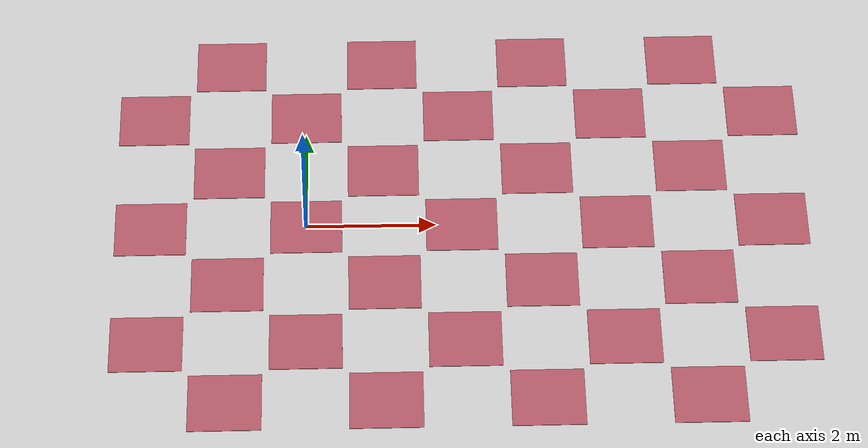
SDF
<?xml version="1.0" ?>
<sdf version="1.9">
  <world name="empty_ground">
    <physics name="1ms" type="ignored">
      <max_step_size>0.001</max_step_size>
      <real_time_factor>1.0</real_time_factor>
    </physics>
    <plugin filename="gz-sim-physics-system" name="gz::sim::systems::Physics"/>
    <plugin filename="gz-sim-user-commands-system" name="gz::sim::systems::UserCommands"/>
    <plugin filename="gz-sim-scene-broadcaster-system" name="gz::sim::systems::SceneBroadcaster"/>
    <plugin filename="gz-sim-sensors-system" name="gz::sim::systems::Sensors">
      <render_engine>ogre2</render_engine>
    </plugin>
    <plugin filename="gz-sim-imu-system" name="gz::sim::systems::Imu"/>

    <light type="directional" name="sun">
      <cast_shadows>true</cast_shadows>
      <pose>0 0 10 0 0 0</pose>
      <diffuse>0.8 0.8 0.8 1</diffuse>
      <specular>0.2 0.2 0.2 1</specular>
      <direction>-0.5 0.1 -0.9</direction>
    </light>

    <model name="ground_plane">
      <static>true</static>
      <link name="link">
        <collision name="collision">
          <geometry><plane><normal>0 0 1</normal><size>100 100</size></plane></geometry>
          <surface>
            <friction>
              <ode><mu>1.5</mu><mu2>1.5</mu2></ode>
              <torsional><coefficient>0.0</coefficient></torsional>
            </friction>
          </surface>
        </collision>
        <visual name="visual">
          <geometry><plane><normal>0 0 1</normal><size>100 100</size></plane></geometry>
          <material>
            <ambient>0.8 0.8 0.8 1</ambient>
            <diffuse>0.8 0.8 0.8 1</diffuse>
          </material>
        </visual>
      </link>
    </model>

    <model name="patch_1">
      <static>true</static>
      <pose>-2.400 -2.400 0.004 0 0 0</pose>
      <link name="link">
        <collision name="collision">
          <geometry><box><size>1.1 1.1 0.008</size></box></geometry>
          <surface>
            <friction>
              <ode><mu>0.15</mu><mu2>0.15</mu2></ode>
              <torsional><coefficient>0.0</coefficient></torsional>
            </friction>
          </surface>
        </collision>
        <visual name="visual">
          <geometry><box><size>1.1 1.1 0.008</size></box></geometry>
          <material>
            <ambient>0.65 0.3 0.35 1</ambient>
            <diffuse>0.70 0.35 0.4 1</diffuse>
          </material>
        </visual>
      </link>
    </model>

    <model name="patch_2">
      <static>true</static>
      <pose>-2.400 0.000 0.004 0 0 0</pose>
      <link name="link">
        <collision name="collision">
          <geometry><box><size>1.1 1.1 0.008</size></box></geometry>
          <surface>
            <friction>
              <ode><mu>0.15</mu><mu2>0.15</mu2></ode>
              <torsional><coefficient>0.0</coefficient></torsional>
            </friction>
          </surface>
        </collision>
        <visual name="visual">
          <geometry><box><size>1.1 1.1 0.008</size></box></geometry>
          <material>
            <ambient>0.65 0.3 0.35 1</ambient>
            <diffuse>0.70 0.35 0.4 1</diffuse>
          </material>
        </visual>
      </link>
    </model>

    <model name="patch_3">
      <static>true</static>
      <pose>-2.400 2.400 0.004 0 0 0</pose>
      <link name="link">
        <collision name="collision">
          <geometry><box><size>1.1 1.1 0.008</size></box></geometry>
          <surface>
            <friction>
              <ode><mu>0.15</mu><mu2>0.15</mu2></ode>
              <torsional><coefficient>0.0</coefficient></torsional>
            </friction>
          </surface>
        </collision>
        <visual name="visual">
          <geometry><box><size>1.1 1.1 0.008</size></box></geometry>
          <material>
            <ambient>0.65 0.3 0.35 1</ambient>
            <diffuse>0.70 0.35 0.4 1</diffuse>
          </material>
        </visual>
      </link>
    </model>

    <model name="patch_4">
      <static>true</static>
      <pose>-1.200 -3.600 0.004 0 0 0</pose>
      <link name="link">
        <collision name="collision">
          <geometry><box><size>1.1 1.1 0.008</size></box></geometry>
          <surface>
            <friction>
              <ode><mu>0.15</mu><mu2>0.15</mu2></ode>
              <torsional><coefficient>0.0</coefficient></torsional>
            </friction>
          </surface>
        </collision>
        <visual name="visual">
          <geometry><box><size>1.1 1.1 0.008</size></box></geometry>
          <material>
            <ambient>0.65 0.3 0.35 1</ambient>
            <diffuse>0.70 0.35 0.4 1</diffuse>
          </material>
        </visual>
      </link>
    </model>

    <model name="patch_5">
      <static>true</static>
      <pose>-1.200 -1.200 0.004 0 0 0</pose>
      <link name="link">
        <collision name="collision">
          <geometry><box><size>1.1 1.1 0.008</size></box></geometry>
          <surface>
            <friction>
              <ode><mu>0.15</mu><mu2>0.15</mu2></ode>
              <torsional><coefficient>0.0</coefficient></torsional>
            </friction>
          </surface>
        </collision>
        <visual name="visual">
          <geometry><box><size>1.1 1.1 0.008</size></box></geometry>
          <material>
            <ambient>0.65 0.3 0.35 1</ambient>
            <diffuse>0.70 0.35 0.4 1</diffuse>
          </material>
        </visual>
      </link>
    </model>

    <model name="patch_6">
      <static>true</static>
      <pose>-1.200 1.200 0.004 0 0 0</pose>
      <link name="link">
        <collision name="collision">
          <geometry><box><size>1.1 1.1 0.008</size></box></geometry>
          <surface>
            <friction>
              <ode><mu>0.15</mu><mu2>0.15</mu2></ode>
              <torsional><coefficient>0.0</coefficient></torsional>
            </friction>
          </surface>
        </collision>
        <visual name="visual">
          <geometry><box><size>1.1 1.1 0.008</size></box></geometry>
          <material>
            <ambient>0.65 0.3 0.35 1</ambient>
            <diffuse>0.70 0.35 0.4 1</diffuse>
          </material>
        </visual>
      </link>
    </model>

    <model name="patch_7">
      <static>true</static>
      <pose>-1.200 3.600 0.004 0 0 0</pose>
      <link name="link">
        <collision name="collision">
          <geometry><box><size>1.1 1.1 0.008</size></box></geometry>
          <surface>
            <friction>
              <ode><mu>0.15</mu><mu2>0.15</mu2></ode>
              <torsional><coefficient>0.0</coefficient></torsional>
            </friction>
          </surface>
        </collision>
        <visual name="visual">
          <geometry><box><size>1.1 1.1 0.008</size></box></geometry>
          <material>
            <ambient>0.65 0.3 0.35 1</ambient>
            <diffuse>0.70 0.35 0.4 1</diffuse>
          </material>
        </visual>
      </link>
    </model>

    <model name="patch_8">
      <static>true</static>
      <pose>0.000 -2.400 0.004 0 0 0</pose>
      <link name="link">
        <collision name="collision">
          <geometry><box><size>1.1 1.1 0.008</size></box></geometry>
          <surface>
            <friction>
              <ode><mu>0.15</mu><mu2>0.15</mu2></ode>
              <torsional><coefficient>0.0</coefficient></torsional>
            </friction>
          </surface>
        </collision>
        <visual name="visual">
          <geometry><box><size>1.1 1.1 0.008</size></box></geometry>
          <material>
            <ambient>0.65 0.3 0.35 1</ambient>
            <diffuse>0.70 0.35 0.4 1</diffuse>
          </material>
        </visual>
      </link>
    </model>

    <model name="patch_9">
      <static>true</static>
      <pose>0.000 0.000 0.004 0 0 0</pose>
      <link name="link">
        <collision name="collision">
          <geometry><box><size>1.1 1.1 0.008</size></box></geometry>
          <surface>
            <friction>
              <ode><mu>0.15</mu><mu2>0.15</mu2></ode>
              <torsional><coefficient>0.0</coefficient></torsional>
            </friction>
          </surface>
        </collision>
        <visual name="visual">
          <geometry><box><size>1.1 1.1 0.008</size></box></geometry>
          <material>
            <ambient>0.65 0.3 0.35 1</ambient>
            <diffuse>0.70 0.35 0.4 1</diffuse>
          </material>
        </visual>
      </link>
    </model>

    <model name="patch_10">
      <static>true</static>
      <pose>0.000 2.400 0.004 0 0 0</pose>
      <link name="link">
        <collision name="collision">
          <geometry><box><size>1.1 1.1 0.008</size></box></geometry>
          <surface>
            <friction>
              <ode><mu>0.15</mu><mu2>0.15</mu2></ode>
              <torsional><coefficient>0.0</coefficient></torsional>
            </friction>
          </surface>
        </collision>
        <visual name="visual">
          <geometry><box><size>1.1 1.1 0.008</size></box></geometry>
          <material>
            <ambient>0.65 0.3 0.35 1</ambient>
            <diffuse>0.70 0.35 0.4 1</diffuse>
          </material>
        </visual>
      </link>
    </model>

    <model name="patch_11">
      <static>true</static>
      <pose>1.200 -3.600 0.004 0 0 0</pose>
      <link name="link">
        <collision name="collision">
          <geometry><box><size>1.1 1.1 0.008</size></box></geometry>
          <surface>
            <friction>
              <ode><mu>0.15</mu><mu2>0.15</mu2></ode>
              <torsional><coefficient>0.0</coefficient></torsional>
            </friction>
          </surface>
        </collision>
        <visual name="visual">
          <geometry><box><size>1.1 1.1 0.008</size></box></geometry>
          <material>
            <ambient>0.65 0.3 0.35 1</ambient>
            <diffuse>0.70 0.35 0.4 1</diffuse>
          </material>
        </visual>
      </link>
    </model>

    <model name="patch_12">
      <static>true</static>
      <pose>1.200 -1.200 0.004 0 0 0</pose>
      <link name="link">
        <collision name="collision">
          <geometry><box><size>1.1 1.1 0.008</size></box></geometry>
          <surface>
            <friction>
              <ode><mu>0.15</mu><mu2>0.15</mu2></ode>
              <torsional><coefficient>0.0</coefficient></torsional>
            </friction>
          </surface>
        </collision>
        <visual name="visual">
          <geometry><box><size>1.1 1.1 0.008</size></box></geometry>
          <material>
            <ambient>0.65 0.3 0.35 1</ambient>
            <diffuse>0.70 0.35 0.4 1</diffuse>
          </material>
        </visual>
      </link>
    </model>

    <model name="patch_13">
      <static>true</static>
      <pose>1.200 1.200 0.004 0 0 0</pose>
      <link name="link">
        <collision name="collision">
          <geometry><box><size>1.1 1.1 0.008</size></box></geometry>
          <surface>
            <friction>
              <ode><mu>0.15</mu><mu2>0.15</mu2></ode>
              <torsional><coefficient>0.0</coefficient></torsional>
            </friction>
          </surface>
        </collision>
        <visual name="visual">
          <geometry><box><size>1.1 1.1 0.008</size></box></geometry>
          <material>
            <ambient>0.65 0.3 0.35 1</ambient>
            <diffuse>0.70 0.35 0.4 1</diffuse>
          </material>
        </visual>
      </link>
    </model>

    <model name="patch_14">
      <static>true</static>
      <pose>1.200 3.600 0.004 0 0 0</pose>
      <link name="link">
        <collision name="collision">
          <geometry><box><size>1.1 1.1 0.008</size></box></geometry>
          <surface>
            <friction>
              <ode><mu>0.15</mu><mu2>0.15</mu2></ode>
              <torsional><coefficient>0.0</coefficient></torsional>
            </friction>
          </surface>
        </collision>
        <visual name="visual">
          <geometry><box><size>1.1 1.1 0.008</size></box></geometry>
          <material>
            <ambient>0.65 0.3 0.35 1</ambient>
            <diffuse>0.70 0.35 0.4 1</diffuse>
          </material>
        </visual>
      </link>
    </model>

    <model name="patch_15">
      <static>true</static>
      <pose>2.400 -2.400 0.004 0 0 0</pose>
      <link name="link">
        <collision name="collision">
          <geometry><box><size>1.1 1.1 0.008</size></box></geometry>
          <surface>
            <friction>
              <ode><mu>0.15</mu><mu2>0.15</mu2></ode>
              <torsional><coefficient>0.0</coefficient></torsional>
            </friction>
          </surface>
        </collision>
        <visual name="visual">
          <geometry><box><size>1.1 1.1 0.008</size></box></geometry>
          <material>
            <ambient>0.65 0.3 0.35 1</ambient>
            <diffuse>0.70 0.35 0.4 1</diffuse>
          </material>
        </visual>
      </link>
    </model>

    <model name="patch_16">
      <static>true</static>
      <pose>2.400 0.000 0.004 0 0 0</pose>
      <link name="link">
        <collision name="collision">
          <geometry><box><size>1.1 1.1 0.008</size></box></geometry>
          <surface>
            <friction>
              <ode><mu>0.15</mu><mu2>0.15</mu2></ode>
              <torsional><coefficient>0.0</coefficient></torsional>
            </friction>
          </surface>
        </collision>
        <visual name="visual">
          <geometry><box><size>1.1 1.1 0.008</size></box></geometry>
          <material>
            <ambient>0.65 0.3 0.35 1</ambient>
            <diffuse>0.70 0.35 0.4 1</diffuse>
          </material>
        </visual>
      </link>
    </model>

    <model name="patch_17">
      <static>true</static>
      <pose>2.400 2.400 0.004 0 0 0</pose>
      <link name="link">
        <collision name="collision">
          <geometry><box><size>1.1 1.1 0.008</size></box></geometry>
          <surface>
            <friction>
              <ode><mu>0.15</mu><mu2>0.15</mu2></ode>
              <torsional><coefficient>0.0</coefficient></torsional>
            </friction>
          </surface>
        </collision>
        <visual name="visual">
          <geometry><box><size>1.1 1.1 0.008</size></box></geometry>
          <material>
            <ambient>0.65 0.3 0.35 1</ambient>
            <diffuse>0.70 0.35 0.4 1</diffuse>
          </material>
        </visual>
      </link>
    </model>

    <model name="patch_18">
      <static>true</static>
      <pose>3.600 -3.600 0.004 0 0 0</pose>
      <link name="link">
        <collision name="collision">
          <geometry><box><size>1.1 1.1 0.008</size></box></geometry>
          <surface>
            <friction>
              <ode><mu>0.15</mu><mu2>0.15</mu2></ode>
              <torsional><coefficient>0.0</coefficient></torsional>
            </friction>
          </surface>
        </collision>
        <visual name="visual">
          <geometry><box><size>1.1 1.1 0.008</size></box></geometry>
          <material>
            <ambient>0.65 0.3 0.35 1</ambient>
            <diffuse>0.70 0.35 0.4 1</diffuse>
          </material>
        </visual>
      </link>
    </model>

    <model name="patch_19">
      <static>true</static>
      <pose>3.600 -1.200 0.004 0 0 0</pose>
      <link name="link">
        <collision name="collision">
          <geometry><box><size>1.1 1.1 0.008</size></box></geometry>
          <surface>
            <friction>
              <ode><mu>0.15</mu><mu2>0.15</mu2></ode>
              <torsional><coefficient>0.0</coefficient></torsional>
            </friction>
          </surface>
        </collision>
        <visual name="visual">
          <geometry><box><size>1.1 1.1 0.008</size></box></geometry>
          <material>
            <ambient>0.65 0.3 0.35 1</ambient>
            <diffuse>0.70 0.35 0.4 1</diffuse>
          </material>
        </visual>
      </link>
    </model>

    <model name="patch_20">
      <static>true</static>
      <pose>3.600 1.200 0.004 0 0 0</pose>
      <link name="link">
        <collision name="collision">
          <geometry><box><size>1.1 1.1 0.008</size></box></geometry>
          <surface>
            <friction>
              <ode><mu>0.15</mu><mu2>0.15</mu2></ode>
              <torsional><coefficient>0.0</coefficient></torsional>
            </friction>
          </surface>
        </collision>
        <visual name="visual">
          <geometry><box><size>1.1 1.1 0.008</size></box></geometry>
          <material>
            <ambient>0.65 0.3 0.35 1</ambient>
            <diffuse>0.70 0.35 0.4 1</diffuse>
          </material>
        </visual>
      </link>
    </model>

    <model name="patch_21">
      <static>true</static>
      <pose>3.600 3.600 0.004 0 0 0</pose>
      <link name="link">
        <collision name="collision">
          <geometry><box><size>1.1 1.1 0.008</size></box></geometry>
          <surface>
            <friction>
              <ode><mu>0.15</mu><mu2>0.15</mu2></ode>
              <torsional><coefficient>0.0</coefficient></torsional>
            </friction>
          </surface>
        </collision>
        <visual name="visual">
          <geometry><box><size>1.1 1.1 0.008</size></box></geometry>
          <material>
            <ambient>0.65 0.3 0.35 1</ambient>
            <diffuse>0.70 0.35 0.4 1</diffuse>
          </material>
        </visual>
      </link>
    </model>

    <model name="patch_22">
      <static>true</static>
      <pose>4.800 -2.400 0.004 0 0 0</pose>
      <link name="link">
        <collision name="collision">
          <geometry><box><size>1.1 1.1 0.008</size></box></geometry>
          <surface>
            <friction>
              <ode><mu>0.15</mu><mu2>0.15</mu2></ode>
              <torsional><coefficient>0.0</coefficient></torsional>
            </friction>
          </surface>
        </collision>
        <visual name="visual">
          <geometry><box><size>1.1 1.1 0.008</size></box></geometry>
          <material>
            <ambient>0.65 0.3 0.35 1</ambient>
            <diffuse>0.70 0.35 0.4 1</diffuse>
          </material>
        </visual>
      </link>
    </model>

    <model name="patch_23">
      <static>true</static>
      <pose>4.800 0.000 0.004 0 0 0</pose>
      <link name="link">
        <collision name="collision">
          <geometry><box><size>1.1 1.1 0.008</size></box></geometry>
          <surface>
            <friction>
              <ode><mu>0.15</mu><mu2>0.15</mu2></ode>
              <torsional><coefficient>0.0</coefficient></torsional>
            </friction>
          </surface>
        </collision>
        <visual name="visual">
          <geometry><box><size>1.1 1.1 0.008</size></box></geometry>
          <material>
            <ambient>0.65 0.3 0.35 1</ambient>
            <diffuse>0.70 0.35 0.4 1</diffuse>
          </material>
        </visual>
      </link>
    </model>

    <model name="patch_24">
      <static>true</static>
      <pose>4.800 2.400 0.004 0 0 0</pose>
      <link name="link">
        <collision name="collision">
          <geometry><box><size>1.1 1.1 0.008</size></box></geometry>
          <surface>
            <friction>
              <ode><mu>0.15</mu><mu2>0.15</mu2></ode>
              <torsional><coefficient>0.0</coefficient></torsional>
            </friction>
          </surface>
        </collision>
        <visual name="visual">
          <geometry><box><size>1.1 1.1 0.008</size></box></geometry>
          <material>
            <ambient>0.65 0.3 0.35 1</ambient>
            <diffuse>0.70 0.35 0.4 1</diffuse>
          </material>
        </visual>
      </link>
    </model>

    <model name="patch_25">
      <static>true</static>
      <pose>6.000 -3.600 0.004 0 0 0</pose>
      <link name="link">
        <collision name="collision">
          <geometry><box><size>1.1 1.1 0.008</size></box></geometry>
          <surface>
            <friction>
              <ode><mu>0.15</mu><mu2>0.15</mu2></ode>
              <torsional><coefficient>0.0</coefficient></torsional>
            </friction>
          </surface>
        </collision>
        <visual name="visual">
          <geometry><box><size>1.1 1.1 0.008</size></box></geometry>
          <material>
            <ambient>0.65 0.3 0.35 1</ambient>
            <diffuse>0.70 0.35 0.4 1</diffuse>
          </material>
        </visual>
      </link>
    </model>

    <model name="patch_26">
      <static>true</static>
      <pose>6.000 -1.200 0.004 0 0 0</pose>
      <link name="link">
        <collision name="collision">
          <geometry><box><size>1.1 1.1 0.008</size></box></geometry>
          <surface>
            <friction>
              <ode><mu>0.15</mu><mu2>0.15</mu2></ode>
              <torsional><coefficient>0.0</coefficient></torsional>
            </friction>
          </surface>
        </collision>
        <visual name="visual">
          <geometry><box><size>1.1 1.1 0.008</size></box></geometry>
          <material>
            <ambient>0.65 0.3 0.35 1</ambient>
            <diffuse>0.70 0.35 0.4 1</diffuse>
          </material>
        </visual>
      </link>
    </model>

    <model name="patch_27">
      <static>true</static>
      <pose>6.000 1.200 0.004 0 0 0</pose>
      <link name="link">
        <collision name="collision">
          <geometry><box><size>1.1 1.1 0.008</size></box></geometry>
          <surface>
            <friction>
              <ode><mu>0.15</mu><mu2>0.15</mu2></ode>
              <torsional><coefficient>0.0</coefficient></torsional>
            </friction>
          </surface>
        </collision>
        <visual name="visual">
          <geometry><box><size>1.1 1.1 0.008</size></box></geometry>
          <material>
            <ambient>0.65 0.3 0.35 1</ambient>
            <diffuse>0.70 0.35 0.4 1</diffuse>
          </material>
        </visual>
      </link>
    </model>

    <model name="patch_28">
      <static>true</static>
      <pose>6.000 3.600 0.004 0 0 0</pose>
      <link name="link">
        <collision name="collision">
          <geometry><box><size>1.1 1.1 0.008</size></box></geometry>
          <surface>
            <friction>
              <ode><mu>0.15</mu><mu2>0.15</mu2></ode>
              <torsional><coefficient>0.0</coefficient></torsional>
            </friction>
          </surface>
        </collision>
        <visual name="visual">
          <geometry><box><size>1.1 1.1 0.008</size></box></geometry>
          <material>
            <ambient>0.65 0.3 0.35 1</ambient>
            <diffuse>0.70 0.35 0.4 1</diffuse>
          </material>
        </visual>
      </link>
    </model>

    <model name="patch_29">
      <static>true</static>
      <pose>7.200 -2.400 0.004 0 0 0</pose>
      <link name="link">
        <collision name="collision">
          <geometry><box><size>1.1 1.1 0.008</size></box></geometry>
          <surface>
            <friction>
              <ode><mu>0.15</mu><mu2>0.15</mu2></ode>
              <torsional><coefficient>0.0</coefficient></torsional>
            </friction>
          </surface>
        </collision>
        <visual name="visual">
          <geometry><box><size>1.1 1.1 0.008</size></box></geometry>
          <material>
            <ambient>0.65 0.3 0.35 1</ambient>
            <diffuse>0.70 0.35 0.4 1</diffuse>
          </material>
        </visual>
      </link>
    </model>

    <model name="patch_30">
      <static>true</static>
      <pose>7.200 0.000 0.004 0 0 0</pose>
      <link name="link">
        <collision name="collision">
          <geometry><box><size>1.1 1.1 0.008</size></box></geometry>
          <surface>
            <friction>
              <ode><mu>0.15</mu><mu2>0.15</mu2></ode>
              <torsional><coefficient>0.0</coefficient></torsional>
            </friction>
          </surface>
        </collision>
        <visual name="visual">
          <geometry><box><size>1.1 1.1 0.008</size></box></geometry>
          <material>
            <ambient>0.65 0.3 0.35 1</ambient>
            <diffuse>0.70 0.35 0.4 1</diffuse>
          </material>
        </visual>
      </link>
    </model>

    <model name="patch_31">
      <static>true</static>
      <pose>7.200 2.400 0.004 0 0 0</pose>
      <link name="link">
        <collision name="collision">
          <geometry><box><size>1.1 1.1 0.008</size></box></geometry>
          <surface>
            <friction>
              <ode><mu>0.15</mu><mu2>0.15</mu2></ode>
              <torsional><coefficient>0.0</coefficient></torsional>
            </friction>
          </surface>
        </collision>
        <visual name="visual">
          <geometry><box><size>1.1 1.1 0.008</size></box></geometry>
          <material>
            <ambient>0.65 0.3 0.35 1</ambient>
            <diffuse>0.70 0.35 0.4 1</diffuse>
          </material>
        </visual>
      </link>
    </model>

  </world>
</sdf>
